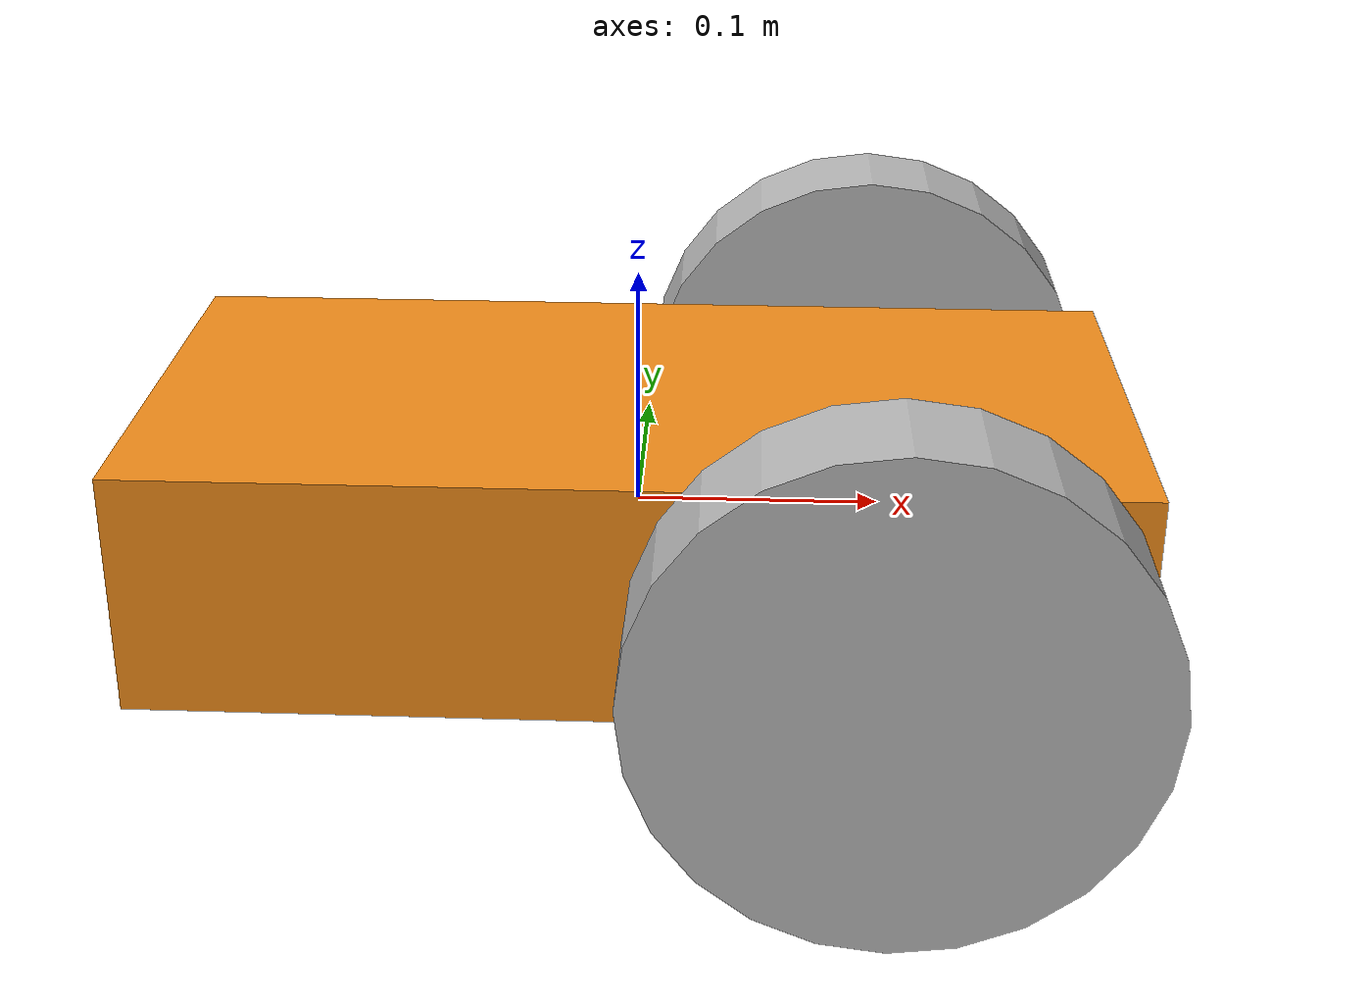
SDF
<?xml version='1.0'?>
<sdf version='1.6'>
  <model name='mybot'>
    <link name='chassis'>
      <pose frame=''>0 0 0 0 -0 0</pose>
      <inertial>
        <pose frame=''>0 0 0 0 -0 0</pose>
        <mass>10</mass>
        <inertia>
          <ixx>0.5</ixx>
          <ixy>0</ixy>
          <ixz>0</ixz>
          <iyy>1</iyy>
          <iyz>0</iyz>
          <izz>0.1</izz>
        </inertia>
      </inertial>
      <self_collide>0</self_collide>
      <kinematic>0</kinematic>
      <velocity_decay/>
      <gravity>1</gravity>
      <visual name='chassis_visual_visual'>
        <pose frame=''>0 0 0 0 -0 0</pose>
        <geometry>
          <box>
            <size>0.4 0.2 0.1</size>
          </box>
        </geometry>
        <material>
          <script>
            <name>Gazebo/Orange</name>
            <uri>file://media/materials/scripts/gazebo.material</uri>
          </script>
          <shader type='pixel'>
            <normal_map>__default__</normal_map>
          </shader>
          <ambient>1 0.509 0.047 1</ambient>
          <diffuse>1 0.509 0.047 1</diffuse>
          <specular>0.5 0.5 0.5 1</specular>
          <emissive>0 0 0 1</emissive>
        </material>
        <transparency>0</transparency>
        <cast_shadows>1</cast_shadows>
      </visual>
      <visual name='chassis_fixed_joint_lump__caster_visual_visual_1'>
        <pose frame=''>-0.15 0 -0.05 0 -0 0</pose>
        <geometry>
          <sphere>
            <radius>0.05</radius>
          </sphere>
        </geometry>
        <material>
          <shader type='pixel'>
            <normal_map>__default__</normal_map>
          </shader>
        </material>
        <cast_shadows>1</cast_shadows>
        <transparency>0</transparency>
      </visual>
      <collision name='chassis_fixed_joint_lump__collision_collision'>
        <laser_retro>0</laser_retro>
        <max_contacts>10</max_contacts>
        <pose frame=''>0 0 0 0 -0 0</pose>
        <geometry>
          <box>
            <size>0.4 0.2 0.1</size>
          </box>
        </geometry>
        <surface>
          <friction>
            <ode>
              <mu>1</mu>
              <mu2>1</mu2>
              <fdir1>0 0 0</fdir1>
              <slip1>0</slip1>
              <slip2>0</slip2>
            </ode>
            <torsional>
              <coefficient>1</coefficient>
              <patch_radius>0</patch_radius>
              <surface_radius>0</surface_radius>
              <use_patch_radius>1</use_patch_radius>
              <ode>
                <slip>0</slip>
              </ode>
            </torsional>
          </friction>
          <bounce>
            <restitution_coefficient>0</restitution_coefficient>
            <threshold>1e+06</threshold>
          </bounce>
          <contact>
            <collide_without_contact>0</collide_without_contact>
            <collide_without_contact_bitmask>1</collide_without_contact_bitmask>
            <collide_bitmask>1</collide_bitmask>
            <ode>
              <soft_cfm>0</soft_cfm>
              <soft_erp>0.2</soft_erp>
              <kp>1e+13</kp>
              <kd>1</kd>
              <max_vel>0.01</max_vel>
              <min_depth>0</min_depth>
            </ode>
            <bullet>
              <split_impulse>1</split_impulse>
              <split_impulse_penetration_threshold>-0.01</split_impulse_penetration_threshold>
              <soft_cfm>0</soft_cfm>
              <soft_erp>0.2</soft_erp>
              <kp>1e+13</kp>
              <kd>1</kd>
            </bullet>
          </contact>
        </surface>
      </collision>
      <collision name='chassis_fixed_joint_lump__caster_collision_collision_1'>
        <laser_retro>0</laser_retro>
        <max_contacts>10</max_contacts>
        <pose frame=''>-0.15 0 -0.05 0 -0 0</pose>
        <geometry>
          <sphere>
            <radius>0.05</radius>
          </sphere>
        </geometry>
        <surface>
          <friction>
            <ode>
              <mu>1</mu>
              <mu2>1</mu2>
              <fdir1>0 0 0</fdir1>
              <slip1>0</slip1>
              <slip2>0</slip2>
            </ode>
            <torsional>
              <coefficient>1</coefficient>
              <patch_radius>0</patch_radius>
              <surface_radius>0</surface_radius>
              <use_patch_radius>1</use_patch_radius>
              <ode>
                <slip>0</slip>
              </ode>
            </torsional>
          </friction>
          <bounce>
            <restitution_coefficient>0</restitution_coefficient>
            <threshold>1e+06</threshold>
          </bounce>
          <contact>
            <collide_without_contact>0</collide_without_contact>
            <collide_without_contact_bitmask>1</collide_without_contact_bitmask>
            <collide_bitmask>1</collide_bitmask>
            <ode>
              <soft_cfm>0</soft_cfm>
              <soft_erp>0.2</soft_erp>
              <kp>1e+13</kp>
              <kd>1</kd>
              <max_vel>0.01</max_vel>
              <min_depth>0</min_depth>
            </ode>
            <bullet>
              <split_impulse>1</split_impulse>
              <split_impulse_penetration_threshold>-0.01</split_impulse_penetration_threshold>
              <soft_cfm>0</soft_cfm>
              <soft_erp>0.2</soft_erp>
              <kp>1e+13</kp>
              <kd>1</kd>
            </bullet>
          </contact>
        </surface>
      </collision>
    </link>
    <link name='left_wheel'>
      <pose frame=''>0.1 0.15 0 0 -0 0</pose>
      <inertial>
        <pose frame=''>0 0 0 -0 1.5707 1.5707</pose>
        <mass>5</mass>
        <inertia>
          <ixx>1</ixx>
          <ixy>0</ixy>
          <ixz>0</ixz>
          <iyy>1</iyy>
          <iyz>0</iyz>
          <izz>1</izz>
        </inertia>
      </inertial>
      <self_collide>0</self_collide>
      <kinematic>0</kinematic>
      <visual name='left_wheel_visual_visual'>
        <pose frame=''>0 0 0 4.8e-05 1.5707 1.57075</pose>
        <geometry>
          <cylinder>
            <length>0.05</length>
            <radius>0.1</radius>
          </cylinder>
        </geometry>
        <material>
          <shader type='pixel'/>
        </material>
        <cast_shadows>1</cast_shadows>
        <transparency>0</transparency>
      </visual>
      <collision name='left_wheel_fixed_joint_lump__collision_collision'>
        <laser_retro>0</laser_retro>
        <max_contacts>10</max_contacts>
        <pose frame=''>0 0 0 -0 1.5707 1.5707</pose>
        <geometry>
          <cylinder>
            <radius>0.1</radius>
            <length>0.05</length>
          </cylinder>
        </geometry>
        <surface>
          <friction>
            <ode>
              <mu>1</mu>
              <mu2>1</mu2>
              <fdir1>0 0 0</fdir1>
              <slip1>0</slip1>
              <slip2>0</slip2>
            </ode>
            <torsional>
              <coefficient>1</coefficient>
              <patch_radius>0</patch_radius>
              <surface_radius>0</surface_radius>
              <use_patch_radius>1</use_patch_radius>
              <ode>
                <slip>0</slip>
              </ode>
            </torsional>
          </friction>
          <bounce>
            <restitution_coefficient>0</restitution_coefficient>
            <threshold>1e+06</threshold>
          </bounce>
          <contact>
            <collide_without_contact>0</collide_without_contact>
            <collide_without_contact_bitmask>1</collide_without_contact_bitmask>
            <collide_bitmask>1</collide_bitmask>
            <ode>
              <soft_cfm>0</soft_cfm>
              <soft_erp>0.2</soft_erp>
              <kp>1e+13</kp>
              <kd>1</kd>
              <max_vel>0.01</max_vel>
              <min_depth>0</min_depth>
            </ode>
            <bullet>
              <split_impulse>1</split_impulse>
              <split_impulse_penetration_threshold>-0.01</split_impulse_penetration_threshold>
              <soft_cfm>0</soft_cfm>
              <soft_erp>0.2</soft_erp>
              <kp>1e+13</kp>
              <kd>1</kd>
            </bullet>
          </contact>
        </surface>
      </collision>
    </link>
    <link name='right_wheel'>
      <pose frame=''>0.1 -0.15 0 0 -0 0</pose>
      <inertial>
        <pose frame=''>0 0 0 -0 1.5707 1.5707</pose>
        <mass>5</mass>
        <inertia>
          <ixx>1</ixx>
          <ixy>0</ixy>
          <ixz>0</ixz>
          <iyy>1</iyy>
          <iyz>0</iyz>
          <izz>1</izz>
        </inertia>
      </inertial>
      <self_collide>0</self_collide>
      <kinematic>0</kinematic>
      <visual name='right_wheel_visual_visual'>
        <pose frame=''>0 0 0 4.8e-05 1.5707 1.57075</pose>
        <geometry>
          <cylinder>
            <length>0.05</length>
            <radius>0.1</radius>
          </cylinder>
        </geometry>
        <material>
          <shader type='pixel'/>
        </material>
        <cast_shadows>1</cast_shadows>
        <transparency>0</transparency>
      </visual>
      <collision name='right_wheel_fixed_joint_lump__collision_collision'>
        <laser_retro>0</laser_retro>
        <max_contacts>10</max_contacts>
        <pose frame=''>0 0 0 -0 1.5707 1.5707</pose>
        <geometry>
          <cylinder>
            <radius>0.1</radius>
            <length>0.05</length>
          </cylinder>
        </geometry>
        <surface>
          <friction>
            <ode>
              <mu>1</mu>
              <mu2>1</mu2>
              <fdir1>0 0 0</fdir1>
              <slip1>0</slip1>
              <slip2>0</slip2>
            </ode>
            <torsional>
              <coefficient>1</coefficient>
              <patch_radius>0</patch_radius>
              <surface_radius>0</surface_radius>
              <use_patch_radius>1</use_patch_radius>
              <ode>
                <slip>0</slip>
              </ode>
            </torsional>
          </friction>
          <bounce>
            <restitution_coefficient>0</restitution_coefficient>
            <threshold>1e+06</threshold>
          </bounce>
          <contact>
            <collide_without_contact>0</collide_without_contact>
            <collide_without_contact_bitmask>1</collide_without_contact_bitmask>
            <collide_bitmask>1</collide_bitmask>
            <ode>
              <soft_cfm>0</soft_cfm>
              <soft_erp>0.2</soft_erp>
              <kp>1e+13</kp>
              <kd>1</kd>
              <max_vel>0.01</max_vel>
              <min_depth>0</min_depth>
            </ode>
            <bullet>
              <split_impulse>1</split_impulse>
              <split_impulse_penetration_threshold>-0.01</split_impulse_penetration_threshold>
              <soft_cfm>0</soft_cfm>
              <soft_erp>0.2</soft_erp>
              <kp>1e+13</kp>
              <kd>1</kd>
            </bullet>
          </contact>
        </surface>
      </collision>
    </link>
    <joint name='left_wheel_hinge' type='revolute'>
      <parent>chassis</parent>
      <child>left_wheel</child>
      <pose frame=''>0 0 0 0 -0 0</pose>
      <axis>
        <xyz>0 1 0</xyz>
        <use_parent_model_frame>1</use_parent_model_frame>
        <limit>
          <lower>-1e+16</lower>
          <upper>1e+16</upper>
          <effort>-1</effort>
          <velocity>-1</velocity>
        </limit>
        <dynamics>
          <spring_reference>0</spring_reference>
          <spring_stiffness>0</spring_stiffness>
          <damping>0</damping>
          <friction>0</friction>
        </dynamics>
      </axis>
      <physics>
        <ode>
          <limit>
            <cfm>0</cfm>
            <erp>0.2</erp>
          </limit>
          <suspension>
            <cfm>0</cfm>
            <erp>0.2</erp>
          </suspension>
        </ode>
      </physics>
    </joint>
    <joint name='right_wheel_hinge' type='revolute'>
      <parent>chassis</parent>
      <child>right_wheel</child>
      <pose frame=''>0 0 0 0 -0 0</pose>
      <axis>
        <xyz>0 1 0</xyz>
        <use_parent_model_frame>1</use_parent_model_frame>
        <limit>
          <lower>-1e+16</lower>
          <upper>1e+16</upper>
          <effort>-1</effort>
          <velocity>-1</velocity>
        </limit>
        <dynamics>
          <spring_reference>0</spring_reference>
          <spring_stiffness>0</spring_stiffness>
          <damping>0</damping>
          <friction>0</friction>
        </dynamics>
      </axis>
      <physics>
        <ode>
          <limit>
            <cfm>0</cfm>
            <erp>0.2</erp>
          </limit>
          <suspension>
            <cfm>0</cfm>
            <erp>0.2</erp>
          </suspension>
        </ode>
      </physics>
    </joint>
    <static>0</static>
    <allow_auto_disable>1</allow_auto_disable>
    <plugin name='differential_drive_controller' filename='libgazebo_ros_diff_drive.so'>
      <legacyMode>false</legacyMode>
      <alwaysOn>true</alwaysOn>
      <updateRate>20</updateRate>
      <leftJoint>left_wheel_hinge</leftJoint>
      <rightJoint>right_wheel_hinge</rightJoint>
      <wheelSeparation>0.4</wheelSeparation>
      <wheelDiameter>0.1</wheelDiameter>
      <torque>20</torque>
      <commandTopic>key_vel</commandTopic>
      <odometryTopic>odom</odometryTopic>
      <odometryFrame>odom</odometryFrame>
      <robotBaseFrame>chassis</robotBaseFrame>
      <robotNamespace>/</robotNamespace>
    </plugin>
  </model>
</sdf>
